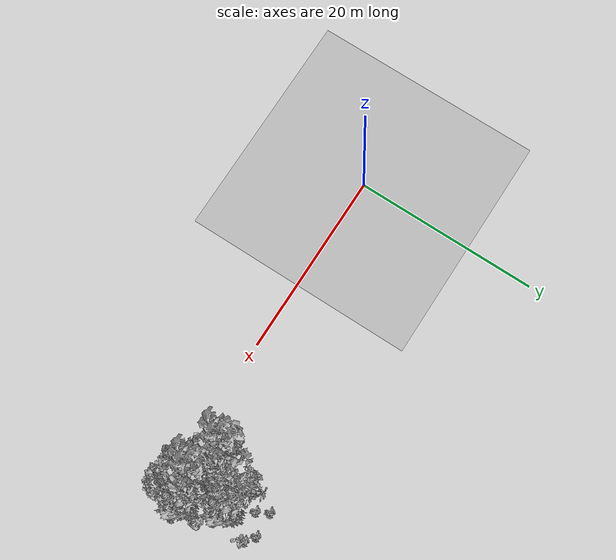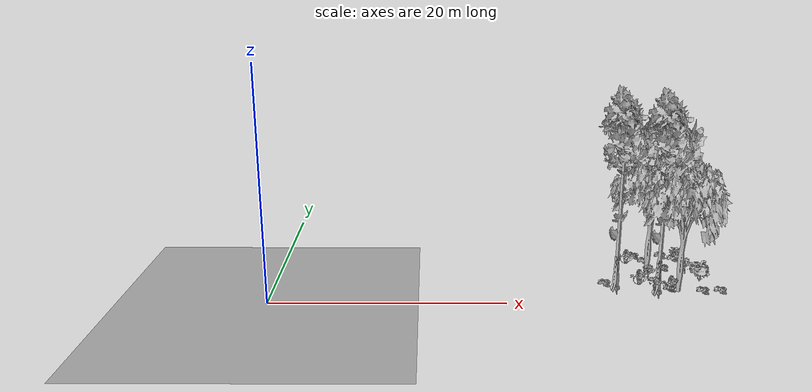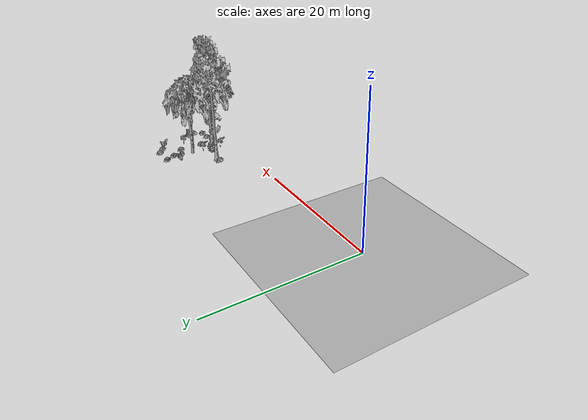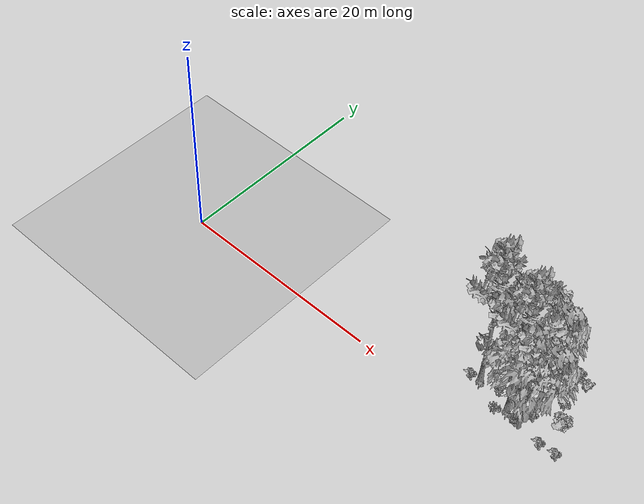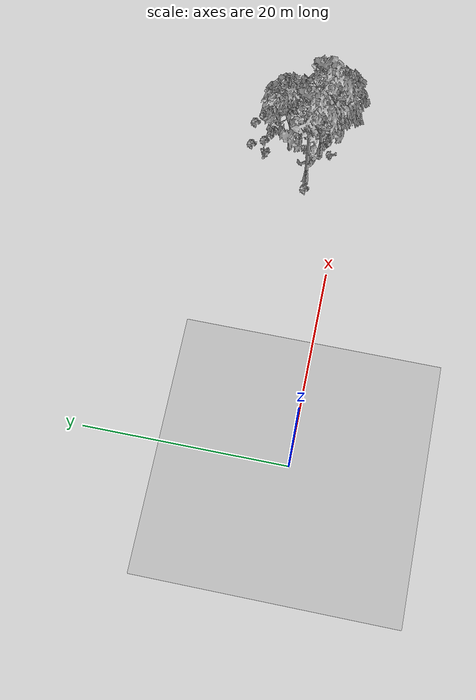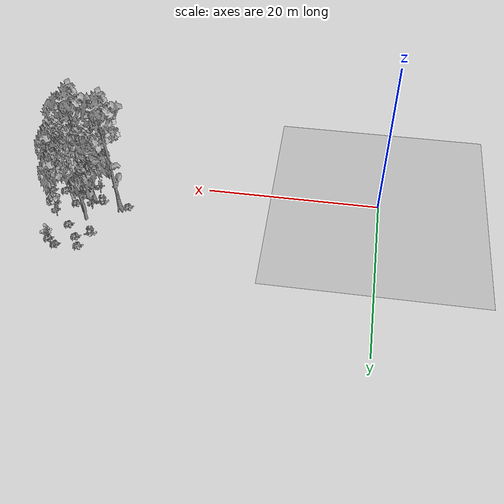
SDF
<sdf version="1.7">
 <world name="default">
  <model name="ground_plane">
   <static>1</static>
   <link name="link">
    <collision name="collision">
     <pose>-50 0 0 0 -0 0</pose>
     <geometry><plane><normal>0 0 1</normal><size>80 80</size></plane></geometry>
     <surface><contact><ode><min_depth>0.01</min_depth><max_vel>0</max_vel></ode></contact></surface>
    </collision>
    <visual name="grass">
     <cast_shadows>0</cast_shadows>
     <geometry>
      <mesh>
       <scale>0.46714285714285714 0.46714285714285714 0.1</scale>
       <uri>file://grass_plane/meshes/grass_plane.dae</uri>
      </mesh>
     </geometry>
    </visual>
   </link>
  </model>
  <model name="Tree 130">
   <static>1</static>
   <pose>34.91568146380641 2.448651677209753 0 1.57079 -0 0</pose>
   <link name="link">
    <collision name="collision">
     <geometry><mesh><scale>3.5 5 3.5</scale><uri>model://tree_2/meshes/tree_2.obj</uri></mesh></geometry>
    </collision>
    <visual name="visual">
     <geometry><mesh><scale>3.5 5 3.5</scale><uri>model://tree_2/meshes/tree_2.obj</uri></mesh></geometry>
    </visual>
   </link>
  </model>
  <model name="Tree 147">
   <static>1</static>
   <pose>33.37583515392657 3.106596969184814 0 1.57079 -0 0</pose>
   <link name="link">
    <collision name="collision">
     <geometry><mesh><scale>3.5 5 3.5</scale><uri>model://tree_9/meshes/tree_9.obj</uri></mesh></geometry>
    </collision>
    <visual name="visual">
     <geometry><mesh><scale>3.5 5 3.5</scale><uri>model://tree_9/meshes/tree_9.obj</uri></mesh></geometry>
    </visual>
   </link>
  </model>
  <model name="Tree 179">
   <static>1</static>
   <pose>29.935785916174297 3.994594389504499 0 1.57079 -0 0</pose>
   <link name="link">
    <collision name="collision">
     <geometry><mesh><scale>3.5 5 3.5</scale><uri>model://tree_9/meshes/tree_9.obj</uri></mesh></geometry>
    </collision>
    <visual name="visual">
     <geometry><mesh><scale>3.5 5 3.5</scale><uri>model://tree_9/meshes/tree_9.obj</uri></mesh></geometry>
    </visual>
   </link>
  </model>
  <model name="Tree 385">
   <static>1</static>
   <pose>33.173528400310445 6.262692564567651 0 1.57079 -0 0</pose>
   <link name="link">
    <collision name="collision">
     <geometry><mesh><scale>3.5 5 3.5</scale><uri>model://tree_2/meshes/tree_2.obj</uri></mesh></geometry>
    </collision>
    <visual name="visual">
     <geometry><mesh><scale>3.5 5 3.5</scale><uri>model://tree_2/meshes/tree_2.obj</uri></mesh></geometry>
    </visual>
   </link>
  </model>
  <model name="Bush 27">
   <static>1</static>
   <pose>33.032106467810834 4.740487464004211 0 1.57079 -0 0</pose>
   <link name="link">
    <collision name="collision">
     <geometry><mesh><scale>2 2 2</scale><uri>model://bush_5/meshes/bush_5.obj</uri></mesh></geometry>
     <surface><contact><collide_without_contact>false</collide_without_contact></contact></surface>
    </collision>
    <visual name="visual">
     <geometry><mesh><scale>2 2 2</scale><uri>model://bush_5/meshes/bush_5.obj</uri></mesh></geometry>
    </visual>
   </link>
  </model>
  <model name="Bush 120">
   <static>1</static>
   <pose>37.076104360041214 2.348217695519807 0 1.57079 -0 0</pose>
   <link name="link">
    <collision name="collision">
     <geometry><mesh><scale>2 2 2</scale><uri>model://bush_2/meshes/bush_2.obj</uri></mesh></geometry>
     <surface><contact><collide_without_contact>false</collide_without_contact></contact></surface>
    </collision>
    <visual name="visual">
     <geometry><mesh><scale>2 2 2</scale><uri>model://bush_2/meshes/bush_2.obj</uri></mesh></geometry>
    </visual>
   </link>
  </model>
  <model name="Bush 177">
   <static>1</static>
   <pose>36.64527045325477 9.640235039594735 0 1.57079 -0 0</pose>
   <link name="link">
    <collision name="collision">
     <geometry><mesh><scale>2 2 2</scale><uri>model://bush_2/meshes/bush_2.obj</uri></mesh></geometry>
     <surface><contact><collide_without_contact>false</collide_without_contact></contact></surface>
    </collision>
    <visual name="visual">
     <geometry><mesh><scale>2 2 2</scale><uri>model://bush_2/meshes/bush_2.obj</uri></mesh></geometry>
    </visual>
   </link>
  </model>
  <model name="Bush 227">
   <static>1</static>
   <pose>36.94179861312608 9.299983719265434 0 1.57079 -0 0</pose>
   <link name="link">
    <collision name="collision">
     <geometry><mesh><scale>2 2 2</scale><uri>model://bush_0/meshes/bush_0.obj</uri></mesh></geometry>
     <surface><contact><collide_without_contact>false</collide_without_contact></contact></surface>
    </collision>
    <visual name="visual">
     <geometry><mesh><scale>2 2 2</scale><uri>model://bush_0/meshes/bush_0.obj</uri></mesh></geometry>
    </visual>
   </link>
  </model>
  <model name="Bush 228">
   <static>1</static>
   <pose>28.92160753372555 3.916574626090153 0 1.57079 -0 0</pose>
   <link name="link">
    <collision name="collision">
     <geometry><mesh><scale>2 2 2</scale><uri>model://bush_2/meshes/bush_2.obj</uri></mesh></geometry>
     <surface><contact><collide_without_contact>false</collide_without_contact></contact></surface>
    </collision>
    <visual name="visual">
     <geometry><mesh><scale>2 2 2</scale><uri>model://bush_2/meshes/bush_2.obj</uri></mesh></geometry>
    </visual>
   </link>
  </model>
  <model name="Bush 261">
   <static>1</static>
   <pose>36.763420461759026 6.297407728727052 0 1.57079 -0 0</pose>
   <link name="link">
    <collision name="collision">
     <geometry><mesh><scale>2 2 2</scale><uri>model://bush_5/meshes/bush_5.obj</uri></mesh></geometry>
     <surface><contact><collide_without_contact>false</collide_without_contact></contact></surface>
    </collision>
    <visual name="visual">
     <geometry><mesh><scale>2 2 2</scale><uri>model://bush_5/meshes/bush_5.obj</uri></mesh></geometry>
    </visual>
   </link>
  </model>
  <model name="Bush 315">
   <static>1</static>
   <pose>32.833981695305766 2.095550344690686 0 1.57079 -0 0</pose>
   <link name="link">
    <collision name="collision">
     <geometry><mesh><scale>2 2 2</scale><uri>model://bush_5/meshes/bush_5.obj</uri></mesh></geometry>
     <surface><contact><collide_without_contact>false</collide_without_contact></contact></surface>
    </collision>
    <visual name="visual">
     <geometry><mesh><scale>2 2 2</scale><uri>model://bush_5/meshes/bush_5.obj</uri></mesh></geometry>
    </visual>
   </link>
  </model>
  <model name="Bush 354">
   <static>1</static>
   <pose>33.69979040078981 9.009847853562512 0 1.57079 -0 0</pose>
   <link name="link">
    <collision name="collision">
     <geometry><mesh><scale>2 2 2</scale><uri>model://bush_2/meshes/bush_2.obj</uri></mesh></geometry>
     <surface><contact><collide_without_contact>false</collide_without_contact></contact></surface>
    </collision>
    <visual name="visual">
     <geometry><mesh><scale>2 2 2</scale><uri>model://bush_2/meshes/bush_2.obj</uri></mesh></geometry>
    </visual>
   </link>
  </model>
  <model name="Bush 418">
   <static>1</static>
   <pose>35.0234160892206 7.366601735273079 0 1.57079 -0 0</pose>
   <link name="link">
    <collision name="collision">
     <geometry><mesh><scale>2 2 2</scale><uri>model://bush_2/meshes/bush_2.obj</uri></mesh></geometry>
     <surface><contact><collide_without_contact>false</collide_without_contact></contact></surface>
    </collision>
    <visual name="visual">
     <geometry><mesh><scale>2 2 2</scale><uri>model://bush_2/meshes/bush_2.obj</uri></mesh></geometry>
    </visual>
   </link>
  </model>
  <model name="Bush 460">
   <static>1</static>
   <pose>34.34444687420172 2.8053309839386387 0 1.57079 -0 0</pose>
   <link name="link">
    <collision name="collision">
     <geometry><mesh><scale>2 2 2</scale><uri>model://bush_2/meshes/bush_2.obj</uri></mesh></geometry>
     <surface><contact><collide_without_contact>false</collide_without_contact></contact></surface>
    </collision>
    <visual name="visual">
     <geometry><mesh><scale>2 2 2</scale><uri>model://bush_2/meshes/bush_2.obj</uri></mesh></geometry>
    </visual>
   </link>
  </model>
  <model name="Bush 516">
   <static>1</static>
   <pose>35.15390546121138 4.1301965590037355 0 1.57079 -0 0</pose>
   <link name="link">
    <collision name="collision">
     <geometry><mesh><scale>2 2 2</scale><uri>model://bush_2/meshes/bush_2.obj</uri></mesh></geometry>
     <surface><contact><collide_without_contact>false</collide_without_contact></contact></surface>
    </collision>
    <visual name="visual">
     <geometry><mesh><scale>2 2 2</scale><uri>model://bush_2/meshes/bush_2.obj</uri></mesh></geometry>
    </visual>
   </link>
  </model>
  <model name="Bush 524">
   <static>1</static>
   <pose>35.64865638054147 10.367939411239746 0 1.57079 -0 0</pose>
   <link name="link">
    <collision name="collision">
     <geometry><mesh><scale>2 2 2</scale><uri>model://bush_2/meshes/bush_2.obj</uri></mesh></geometry>
     <surface><contact><collide_without_contact>false</collide_without_contact></contact></surface>
    </collision>
    <visual name="visual">
     <geometry><mesh><scale>2 2 2</scale><uri>model://bush_2/meshes/bush_2.obj</uri></mesh></geometry>
    </visual>
   </link>
  </model>
  <model name="Bush 536">
   <static>1</static>
   <pose>33.039115064702386 10.264636264837755 0 1.57079 -0 0</pose>
   <link name="link">
    <collision name="collision">
     <geometry><mesh><scale>2 2 2</scale><uri>model://bush_2/meshes/bush_2.obj</uri></mesh></geometry>
     <surface><contact><collide_without_contact>false</collide_without_contact></contact></surface>
    </collision>
    <visual name="visual">
     <geometry><mesh><scale>2 2 2</scale><uri>model://bush_2/meshes/bush_2.obj</uri></mesh></geometry>
    </visual>
   </link>
  </model>
  <model name="Bush 550">
   <static>1</static>
   <pose>38.6115390217344 2.4097257215494565 0 1.57079 -0 0</pose>
   <link name="link">
    <collision name="collision">
     <geometry><mesh><scale>2 2 2</scale><uri>model://bush_2/meshes/bush_2.obj</uri></mesh></geometry>
     <surface><contact><collide_without_contact>false</collide_without_contact></contact></surface>
    </collision>
    <visual name="visual">
     <geometry><mesh><scale>2 2 2</scale><uri>model://bush_2/meshes/bush_2.obj</uri></mesh></geometry>
    </visual>
   </link>
  </model>
  <model name="Bush 603">
   <static>1</static>
   <pose>34.367928021341086 2.450443701359923 0 1.57079 -0 0</pose>
   <link name="link">
    <collision name="collision">
     <geometry><mesh><scale>2 2 2</scale><uri>model://bush_4/meshes/bush_4.obj</uri></mesh></geometry>
     <surface><contact><collide_without_contact>false</collide_without_contact></contact></surface>
    </collision>
    <visual name="visual">
     <geometry><mesh><scale>2 2 2</scale><uri>model://bush_4/meshes/bush_4.obj</uri></mesh></geometry>
    </visual>
   </link>
  </model>
  <model name="Bush 618">
   <static>1</static>
   <pose>37.51749584313663 4.587639542447938 0 1.57079 -0 0</pose>
   <link name="link">
    <collision name="collision">
     <geometry><mesh><scale>2 2 2</scale><uri>model://bush_1/meshes/bush_1.obj</uri></mesh></geometry>
     <surface><contact><collide_without_contact>false</collide_without_contact></contact></surface>
    </collision>
    <visual name="visual">
     <geometry><mesh><scale>2 2 2</scale><uri>model://bush_1/meshes/bush_1.obj</uri></mesh></geometry>
    </visual>
   </link>
  </model>
  <model name="Bush 621">
   <static>1</static>
   <pose>31.939947688681315 3.8087901005282703 0 1.57079 -0 0</pose>
   <link name="link">
    <collision name="collision">
     <geometry><mesh><scale>2 2 2</scale><uri>model://bush_4/meshes/bush_4.obj</uri></mesh></geometry>
     <surface><contact><collide_without_contact>false</collide_without_contact></contact></surface>
    </collision>
    <visual name="visual">
     <geometry><mesh><scale>2 2 2</scale><uri>model://bush_4/meshes/bush_4.obj</uri></mesh></geometry>
    </visual>
   </link>
  </model>
  <model name="Bush 634">
   <static>1</static>
   <pose>31.93477618568899 8.586625798089301 0 1.57079 -0 0</pose>
   <link name="link">
    <collision name="collision">
     <geometry><mesh><scale>2 2 2</scale><uri>model://bush_4/meshes/bush_4.obj</uri></mesh></geometry>
     <surface><contact><collide_without_contact>false</collide_without_contact></contact></surface>
    </collision>
    <visual name="visual">
     <geometry><mesh><scale>2 2 2</scale><uri>model://bush_4/meshes/bush_4.obj</uri></mesh></geometry>
    </visual>
   </link>
  </model>
 </world>
</sdf>
